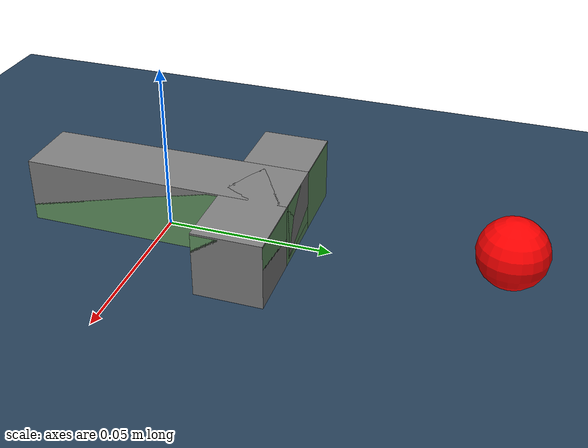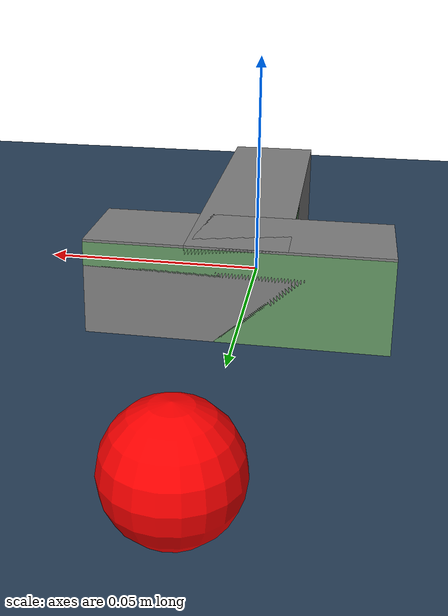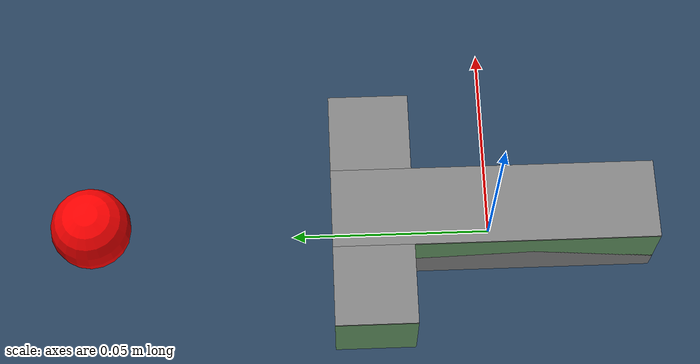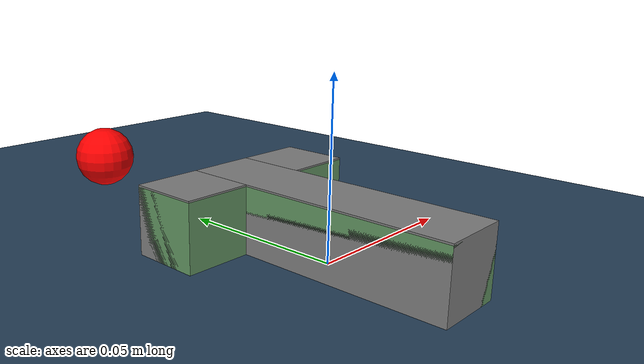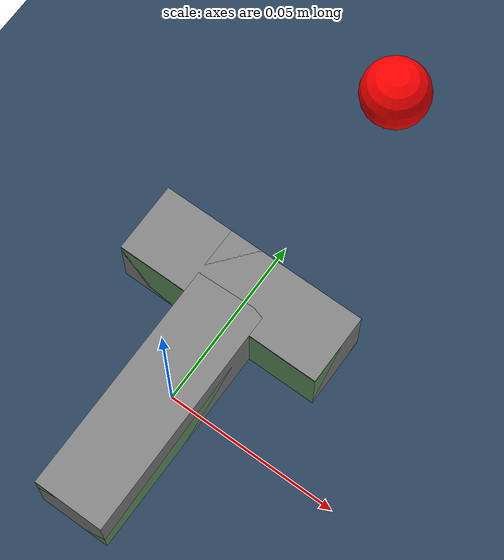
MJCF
<mujoco model="particle_scene">
  <!-- Model that includes like lighting and a ground. -->
  <include file="pusht_unconstrained.xml"/>

  <statistic center="0 0 0" extent="0.9"/>

  <visual>
    <headlight diffuse="0.6 0.6 0.6" ambient="0.3 0.3 0.3" specular="0 0 0"/>
    <rgba haze="0.15 0.25 0.35 1"/>
  </visual>

  <asset>
    <texture type="skybox" builtin="gradient" rgb1="0.3 0.5 0.7" rgb2="0 0 0" width="512" height="3072"/>
    <texture type="2d" name="groundplane" builtin="checker" mark="edge" rgb1="0.2 0.3 0.4" rgb2="0.1 0.2 0.3"
      markrgb="0.8 0.8 0.8" width="300" height="300"/>
    <material name="groundplane" texture="groundplane" texuniform="true" texrepeat="5 5" reflectance="0.2"/>
  </asset>

  <worldbody>
    <light pos="0 0 1"/>
    <geom name="floor" size="0 0 .125" type="plane" material="groundplane"/>
  </worldbody>

</mujoco>

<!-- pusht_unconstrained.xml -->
<mujoco model="pusht">
  <option timestep="0.01" iterations="1" ls_iterations="4" />

  <default>
    <velocity kv="0.1"/>
    <default class="goal">
      <geom conaffinity="0" contype="0" rgba="0 1 0 0.2"/>
    </default>
    <geom friction="1.0" solimp="0.0 0.95 0.005" solref="0.02 1"/>
  </default>

  <worldbody>
    <body name="goal" mocap="true" pos="0.0 0.0 0.009">
      <geom class="goal" name="goal_bottom" type="box" size=".01 0.04 0.01"/>
      <geom class="goal" name="goal_top" type="box" size=".03 0.01 0.01" pos="0.0 0.03 0.0"/>
    </body>

    <body name="block" pos="0.0 0.0 0.0095">
      <joint name="T_x" type="slide" pos="0 0 0" axis="1 0 0" />
      <joint name="T_y" type="slide" pos="0 0 0" axis="0 1 0" />
      <joint name="T_z" axis="0 0 1"/>
      <geom name="bottom" type="box" size=".01 0.04 0.01" />
      <geom name="top" type="box" size=".03 0.01 0.01" pos="0.0 0.03 0.0" />
    </body>

    <body name="pusher" pos="0 .1 .011">
      <joint name="root_x" type="slide" pos="0 0 0" axis="1 0 0" />
      <joint name="root_y" type="slide" pos="0 0 0" axis="0 1 0" />
      <geom name="pusher" type="sphere" size=".01" rgba="1 0 0 1" />
      <site name="pusher" pos="0 0 0" rgba="0 0 0 0"/>
    </body>
  </worldbody>

  <actuator>
    <!-- Removed control limits -->
    <velocity name="x_motor" joint="root_x" />
    <velocity name="y_motor" joint="root_y" />
  </actuator>

  <sensor>
    <framepos name="position" objtype="body" objname="block" reftype="body" refname="goal"/>
    <framequat name="orientation" objtype="body" objname="block" reftype="body" refname="goal"/>
  </sensor>
</mujoco>
